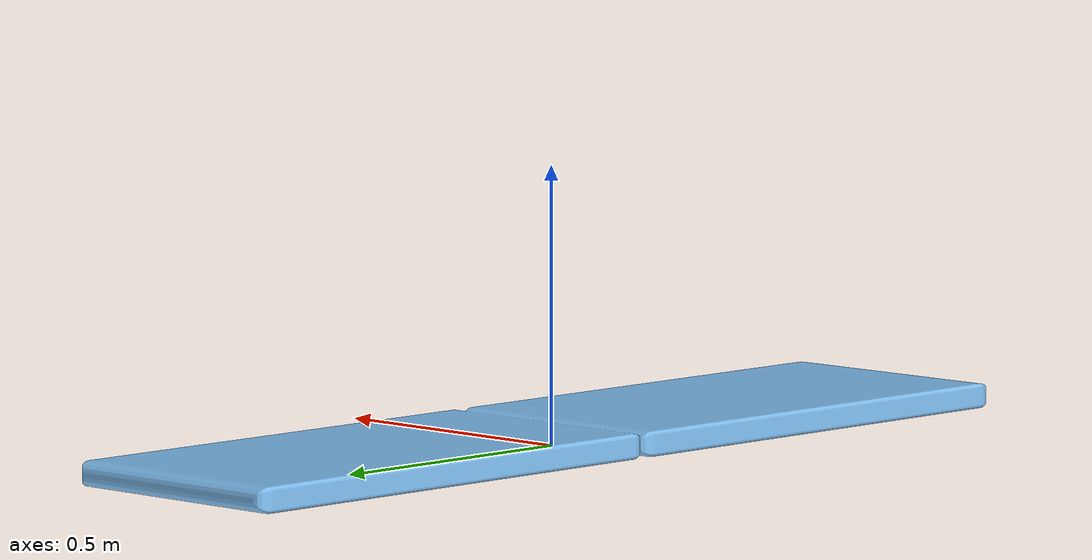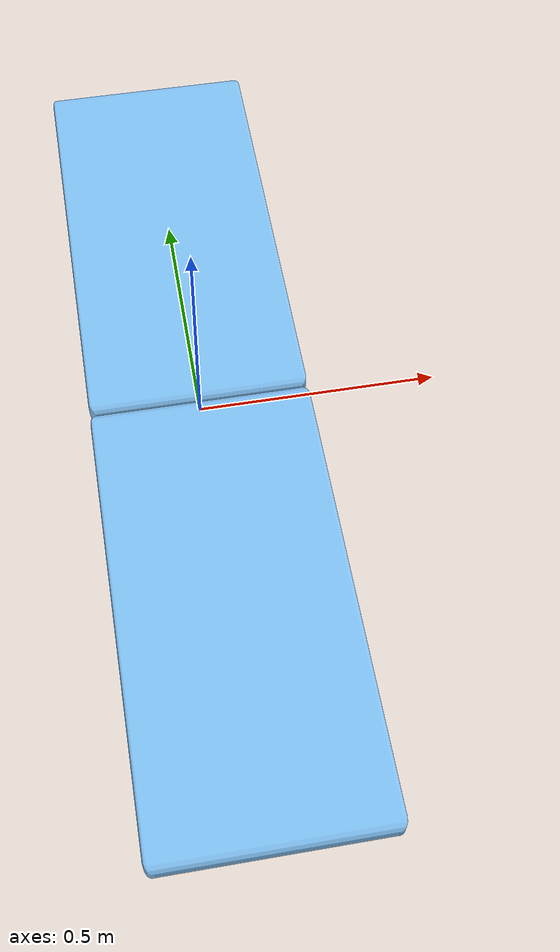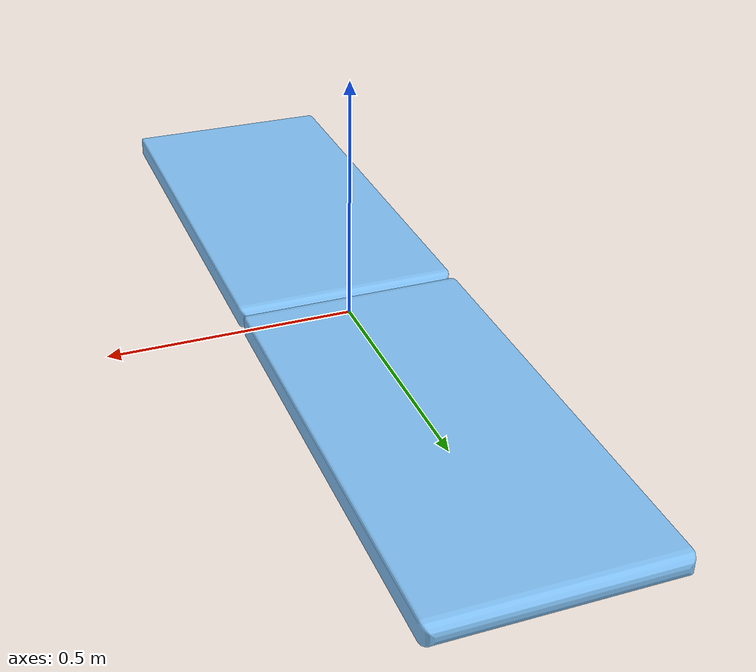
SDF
<?xml version="1.0" ?>
<sdf version="1.5">
  <model name="pad">
    <static>false</static>
    <link name="link">
      <collision name="collision">
        <geometry>
         <mesh>
		  <scale>0.0075 0.01 0.0075</scale>
          <uri>model://pad/meshes/pad.stl</uri>
         </mesh>
        </geometry>
        <surface>
          <friction>
            <ode>
              <mu>100</mu>
              <mu2>50</mu2>
            </ode>
          </friction>
        </surface>
      </collision>
      <visual name="visual">
        <cast_shadows>false</cast_shadows>
        <geometry>
		 <mesh>
		  <scale>0.0075 0.01 0.0075</scale>
          <uri>model://pad/meshes/pad.stl</uri>
         </mesh>
        </geometry>
        <material>
          <script>
            <uri>file://media/materials/scripts/gazebo.material</uri>
            <name>Gazebo/SkyBlue</name>
          </script>
        </material>
      </visual>
    </link>
  </model>
</sdf>
